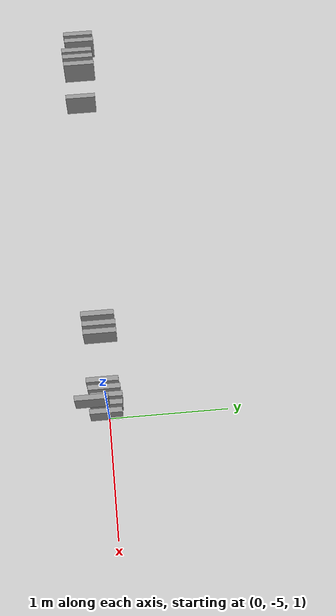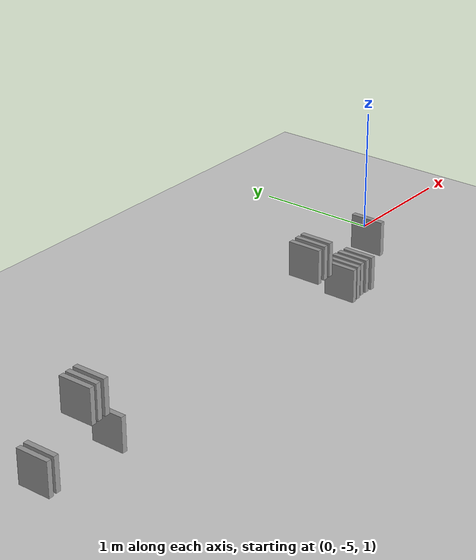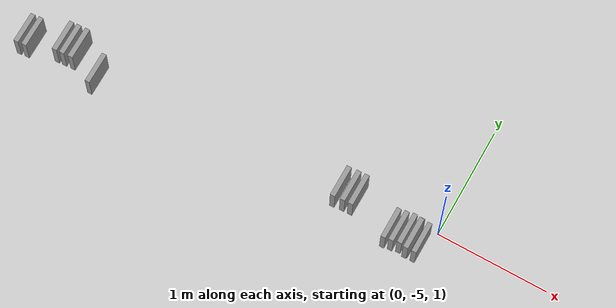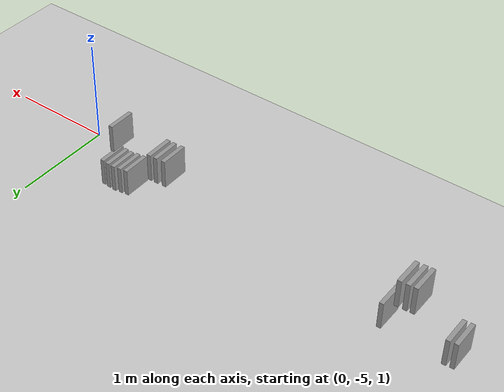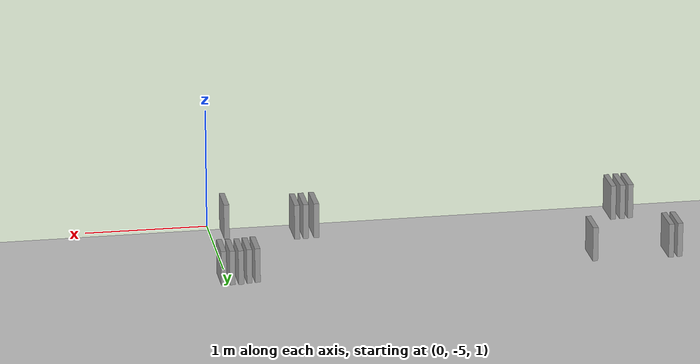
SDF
<sdf version="1.6">
 <world name="default">
  <physics type="ode">
   <max_step_size>0.001</max_step_size>
   <real_time_update_rate>1000</real_time_update_rate>
  </physics>
  <include><uri>model://sun</uri></include>
  <include><uri>model://ground_plane</uri></include>
  <include><name>books</name><uri>model://books</uri><pose>-1.691080 -5.046710 0.834354 0 0 0</pose></include>
 </world>
</sdf>

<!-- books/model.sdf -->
<sdf version='1.6'>
  <model name='books'>
    <link name='link_0'>
      <inertial>
        <mass>0.0037452</mass>
        <inertia>
          <ixx>5.273e-05</ixx>
          <ixy>0</ixy>
          <ixz>0</ixz>
          <iyy>2.782e-05</iyy>
          <iyz>0</iyz>
          <izz>2.614e-05</izz>
        </inertia>
        <pose frame=''>0 0 0 0 -0 0</pose>
      </inertial>
      <pose frame=''>-2.27316 0.001347 -0.171949 0 -0 0</pose>
      <gravity>0</gravity>
      <self_collide>0</self_collide>
      <kinematic>0</kinematic>
      <enable_wind>0</enable_wind>
      <visual name='visual'>
        <pose frame=''>0 0 0 0 -0 0</pose>
        <geometry>
          <box>
            <size>0.044368 0.285961 0.295262</size>
          </box>
        </geometry>
        <material>
          <lighting>1</lighting>
          <script>
            <uri>file://media/materials/scripts/gazebo.material</uri>
            <name>Gazebo/Grey</name>
          </script>
          <shader type='vertex'>
            <normal_map>__default__</normal_map>
          </shader>
        </material>
        <transparency>0</transparency>
        <cast_shadows>1</cast_shadows>
      </visual>
      <collision name='collision'>
        <laser_retro>0</laser_retro>
        <max_contacts>10</max_contacts>
        <pose frame=''>0 0 0 0 -0 0</pose>
        <geometry>
          <box>
            <size>0.044368 0.285961 0.295262</size>
          </box>
        </geometry>
        <surface>
          <friction>
            <ode>
              <mu>1</mu>
              <mu2>1</mu2>
              <fdir1>0 0 0</fdir1>
              <slip1>0</slip1>
              <slip2>0</slip2>
            </ode>
            <torsional>
              <coefficient>1</coefficient>
              <patch_radius>0</patch_radius>
              <surface_radius>0</surface_radius>
              <use_patch_radius>1</use_patch_radius>
              <ode>
                <slip>0</slip>
              </ode>
            </torsional>
          </friction>
          <bounce>
            <restitution_coefficient>0</restitution_coefficient>
            <threshold>1e+06</threshold>
          </bounce>
          <contact>
            <collide_without_contact>0</collide_without_contact>
            <collide_without_contact_bitmask>1</collide_without_contact_bitmask>
            <collide_bitmask>1</collide_bitmask>
            <ode>
              <soft_cfm>0</soft_cfm>
              <soft_erp>0.2</soft_erp>
              <kp>1e+13</kp>
              <kd>1</kd>
              <max_vel>0.01</max_vel>
              <min_depth>0</min_depth>
            </ode>
            <bullet>
              <split_impulse>1</split_impulse>
              <split_impulse_penetration_threshold>-0.01</split_impulse_penetration_threshold>
              <soft_cfm>0</soft_cfm>
              <soft_erp>0.2</soft_erp>
              <kp>1e+13</kp>
              <kd>1</kd>
            </bullet>
          </contact>
        </surface>
      </collision>
    </link>
    <link name='link_0_clone'>
      <inertial>
        <mass>0.0037452</mass>
        <inertia>
          <ixx>5.273e-05</ixx>
          <ixy>0</ixy>
          <ixz>0</ixz>
          <iyy>2.782e-05</iyy>
          <iyz>0</iyz>
          <izz>2.614e-05</izz>
        </inertia>
        <pose frame=''>0 0 0 0 -0 0</pose>
      </inertial>
      <pose frame=''>-2.19825 0.008218 -0.171949 0 -0 0</pose>
      <gravity>0</gravity>
      <self_collide>0</self_collide>
      <kinematic>0</kinematic>
      <enable_wind>0</enable_wind>
      <visual name='visual'>
        <pose frame=''>0 0 0 0 -0 0</pose>
        <geometry>
          <box>
            <size>0.044368 0.285961 0.295262</size>
          </box>
        </geometry>
        <material>
          <lighting>1</lighting>
          <script>
            <uri>file://media/materials/scripts/gazebo.material</uri>
            <name>Gazebo/Grey</name>
          </script>
          <shader type='vertex'>
            <normal_map>__default__</normal_map>
          </shader>
        </material>
        <transparency>0</transparency>
        <cast_shadows>1</cast_shadows>
      </visual>
      <collision name='collision'>
        <laser_retro>0</laser_retro>
        <max_contacts>10</max_contacts>
        <pose frame=''>0 0 0 0 -0 0</pose>
        <geometry>
          <box>
            <size>0.044368 0.285961 0.295262</size>
          </box>
        </geometry>
        <surface>
          <friction>
            <ode>
              <mu>1</mu>
              <mu2>1</mu2>
              <fdir1>0 0 0</fdir1>
              <slip1>0</slip1>
              <slip2>0</slip2>
            </ode>
            <torsional>
              <coefficient>1</coefficient>
              <patch_radius>0</patch_radius>
              <surface_radius>0</surface_radius>
              <use_patch_radius>1</use_patch_radius>
              <ode>
                <slip>0</slip>
              </ode>
            </torsional>
          </friction>
          <bounce>
            <restitution_coefficient>0</restitution_coefficient>
            <threshold>1e+06</threshold>
          </bounce>
          <contact>
            <collide_without_contact>0</collide_without_contact>
            <collide_without_contact_bitmask>1</collide_without_contact_bitmask>
            <collide_bitmask>1</collide_bitmask>
            <ode>
              <soft_cfm>0</soft_cfm>
              <soft_erp>0.2</soft_erp>
              <kp>1e+13</kp>
              <kd>1</kd>
              <max_vel>0.01</max_vel>
              <min_depth>0</min_depth>
            </ode>
            <bullet>
              <split_impulse>1</split_impulse>
              <split_impulse_penetration_threshold>-0.01</split_impulse_penetration_threshold>
              <soft_cfm>0</soft_cfm>
              <soft_erp>0.2</soft_erp>
              <kp>1e+13</kp>
              <kd>1</kd>
            </bullet>
          </contact>
        </surface>
      </collision>
    </link>
    <link name='link_0_clone_0'>
      <inertial>
        <mass>0.0037452</mass>
        <inertia>
          <ixx>5.273e-05</ixx>
          <ixy>0</ixy>
          <ixz>0</ixz>
          <iyy>2.782e-05</iyy>
          <iyz>0</iyz>
          <izz>2.614e-05</izz>
        </inertia>
        <pose frame=''>0 0 0 0 -0 0</pose>
      </inertial>
      <pose frame=''>-1.55443 -0.016063 -0.171949 0 -0 0</pose>
      <gravity>0</gravity>
      <self_collide>0</self_collide>
      <kinematic>0</kinematic>
      <enable_wind>0</enable_wind>
      <visual name='visual'>
        <pose frame=''>0 0 0 0 -0 0</pose>
        <geometry>
          <box>
            <size>0.044368 0.285961 0.295262</size>
          </box>
        </geometry>
        <material>
          <lighting>1</lighting>
          <script>
            <uri>file://media/materials/scripts/gazebo.material</uri>
            <name>Gazebo/Grey</name>
          </script>
          <shader type='vertex'>
            <normal_map>__default__</normal_map>
          </shader>
        </material>
        <transparency>0</transparency>
        <cast_shadows>1</cast_shadows>
      </visual>
      <collision name='collision'>
        <laser_retro>0</laser_retro>
        <max_contacts>10</max_contacts>
        <pose frame=''>0 0 0 0 -0 0</pose>
        <geometry>
          <box>
            <size>0.044368 0.285961 0.295262</size>
          </box>
        </geometry>
        <surface>
          <friction>
            <ode>
              <mu>1</mu>
              <mu2>1</mu2>
              <fdir1>0 0 0</fdir1>
              <slip1>0</slip1>
              <slip2>0</slip2>
            </ode>
            <torsional>
              <coefficient>1</coefficient>
              <patch_radius>0</patch_radius>
              <surface_radius>0</surface_radius>
              <use_patch_radius>1</use_patch_radius>
              <ode>
                <slip>0</slip>
              </ode>
            </torsional>
          </friction>
          <bounce>
            <restitution_coefficient>0</restitution_coefficient>
            <threshold>1e+06</threshold>
          </bounce>
          <contact>
            <collide_without_contact>0</collide_without_contact>
            <collide_without_contact_bitmask>1</collide_without_contact_bitmask>
            <collide_bitmask>1</collide_bitmask>
            <ode>
              <soft_cfm>0</soft_cfm>
              <soft_erp>0.2</soft_erp>
              <kp>1e+13</kp>
              <kd>1</kd>
              <max_vel>0.01</max_vel>
              <min_depth>0</min_depth>
            </ode>
            <bullet>
              <split_impulse>1</split_impulse>
              <split_impulse_penetration_threshold>-0.01</split_impulse_penetration_threshold>
              <soft_cfm>0</soft_cfm>
              <soft_erp>0.2</soft_erp>
              <kp>1e+13</kp>
              <kd>1</kd>
            </bullet>
          </contact>
        </surface>
      </collision>
    </link>
    <link name='link_0_clone_1'>
      <inertial>
        <mass>0.0037452</mass>
        <inertia>
          <ixx>5.273e-05</ixx>
          <ixy>0</ixy>
          <ixz>0</ixz>
          <iyy>2.782e-05</iyy>
          <iyz>0</iyz>
          <izz>2.614e-05</izz>
        </inertia>
        <pose frame=''>0 0 0 0 -0 0</pose>
      </inertial>
      <pose frame=''>-1.77392 -0.004673 0.194966 0 -0 0</pose>
      <gravity>0</gravity>
      <self_collide>0</self_collide>
      <kinematic>0</kinematic>
      <enable_wind>0</enable_wind>
      <visual name='visual'>
        <pose frame=''>0 0 0 0 -0 0</pose>
        <geometry>
          <box>
            <size>0.044368 0.285961 0.295262</size>
          </box>
        </geometry>
        <material>
          <lighting>1</lighting>
          <script>
            <uri>file://media/materials/scripts/gazebo.material</uri>
            <name>Gazebo/Grey</name>
          </script>
          <shader type='vertex'>
            <normal_map>__default__</normal_map>
          </shader>
        </material>
        <transparency>0</transparency>
        <cast_shadows>1</cast_shadows>
      </visual>
      <collision name='collision'>
        <laser_retro>0</laser_retro>
        <max_contacts>10</max_contacts>
        <pose frame=''>0 0 0 0 -0 0</pose>
        <geometry>
          <box>
            <size>0.044368 0.285961 0.295262</size>
          </box>
        </geometry>
        <surface>
          <friction>
            <ode>
              <mu>1</mu>
              <mu2>1</mu2>
              <fdir1>0 0 0</fdir1>
              <slip1>0</slip1>
              <slip2>0</slip2>
            </ode>
            <torsional>
              <coefficient>1</coefficient>
              <patch_radius>0</patch_radius>
              <surface_radius>0</surface_radius>
              <use_patch_radius>1</use_patch_radius>
              <ode>
                <slip>0</slip>
              </ode>
            </torsional>
          </friction>
          <bounce>
            <restitution_coefficient>0</restitution_coefficient>
            <threshold>1e+06</threshold>
          </bounce>
          <contact>
            <collide_without_contact>0</collide_without_contact>
            <collide_without_contact_bitmask>1</collide_without_contact_bitmask>
            <collide_bitmask>1</collide_bitmask>
            <ode>
              <soft_cfm>0</soft_cfm>
              <soft_erp>0.2</soft_erp>
              <kp>1e+13</kp>
              <kd>1</kd>
              <max_vel>0.01</max_vel>
              <min_depth>0</min_depth>
            </ode>
            <bullet>
              <split_impulse>1</split_impulse>
              <split_impulse_penetration_threshold>-0.01</split_impulse_penetration_threshold>
              <soft_cfm>0</soft_cfm>
              <soft_erp>0.2</soft_erp>
              <kp>1e+13</kp>
              <kd>1</kd>
            </bullet>
          </contact>
        </surface>
      </collision>
    </link>
    <link name='link_0_clone_1_clone'>
      <inertial>
        <mass>0.0037452</mass>
        <inertia>
          <ixx>5.273e-05</ixx>
          <ixy>0</ixy>
          <ixz>0</ixz>
          <iyy>2.782e-05</iyy>
          <iyz>0</iyz>
          <izz>2.614e-05</izz>
        </inertia>
        <pose frame=''>0 0 0 0 -0 0</pose>
      </inertial>
      <pose frame=''>-1.84286 -0.009593 0.194966 0 -0 0</pose>
      <gravity>0</gravity>
      <self_collide>0</self_collide>
      <kinematic>0</kinematic>
      <enable_wind>0</enable_wind>
      <visual name='visual'>
        <pose frame=''>0 0 0 0 -0 0</pose>
        <geometry>
          <box>
            <size>0.044368 0.285961 0.295262</size>
          </box>
        </geometry>
        <material>
          <lighting>1</lighting>
          <script>
            <uri>file://media/materials/scripts/gazebo.material</uri>
            <name>Gazebo/Grey</name>
          </script>
          <shader type='pixel'>
            <normal_map>__default__</normal_map>
          </shader>
        </material>
        <transparency>0</transparency>
        <cast_shadows>1</cast_shadows>
      </visual>
      <collision name='collision'>
        <laser_retro>0</laser_retro>
        <max_contacts>10</max_contacts>
        <pose frame=''>0 0 0 0 -0 0</pose>
        <geometry>
          <box>
            <size>0.044368 0.285961 0.295262</size>
          </box>
        </geometry>
        <surface>
          <friction>
            <ode>
              <mu>1</mu>
              <mu2>1</mu2>
              <fdir1>0 0 0</fdir1>
              <slip1>0</slip1>
              <slip2>0</slip2>
            </ode>
            <torsional>
              <coefficient>1</coefficient>
              <patch_radius>0</patch_radius>
              <surface_radius>0</surface_radius>
              <use_patch_radius>1</use_patch_radius>
              <ode>
                <slip>0</slip>
              </ode>
            </torsional>
          </friction>
          <bounce>
            <restitution_coefficient>0</restitution_coefficient>
            <threshold>1e+06</threshold>
          </bounce>
          <contact>
            <collide_without_contact>0</collide_without_contact>
            <collide_without_contact_bitmask>1</collide_without_contact_bitmask>
            <collide_bitmask>1</collide_bitmask>
            <ode>
              <soft_cfm>0</soft_cfm>
              <soft_erp>0.2</soft_erp>
              <kp>1e+13</kp>
              <kd>1</kd>
              <max_vel>0.01</max_vel>
              <min_depth>0</min_depth>
            </ode>
            <bullet>
              <split_impulse>1</split_impulse>
              <split_impulse_penetration_threshold>-0.01</split_impulse_penetration_threshold>
              <soft_cfm>0</soft_cfm>
              <soft_erp>0.2</soft_erp>
              <kp>1e+13</kp>
              <kd>1</kd>
            </bullet>
          </contact>
        </surface>
      </collision>
    </link>
    <link name='link_0_clone_1_clone_0'>
      <inertial>
        <mass>0.0037452</mass>
        <inertia>
          <ixx>5.273e-05</ixx>
          <ixy>0</ixy>
          <ixz>0</ixz>
          <iyy>2.782e-05</iyy>
          <iyz>0</iyz>
          <izz>2.614e-05</izz>
        </inertia>
        <pose frame=''>0 0 0 0 -0 0</pose>
      </inertial>
      <pose frame=''>-1.69477 0.000277 0.194966 0 -0 0</pose>
      <gravity>0</gravity>
      <self_collide>0</self_collide>
      <kinematic>0</kinematic>
      <enable_wind>0</enable_wind>
      <visual name='visual'>
        <pose frame=''>0 0 0 0 -0 0</pose>
        <geometry>
          <box>
            <size>0.044368 0.285961 0.295262</size>
          </box>
        </geometry>
        <material>
          <lighting>1</lighting>
          <script>
            <uri>file://media/materials/scripts/gazebo.material</uri>
            <name>Gazebo/Grey</name>
          </script>
          <shader type='pixel'>
            <normal_map>__default__</normal_map>
          </shader>
        </material>
        <transparency>0</transparency>
        <cast_shadows>1</cast_shadows>
      </visual>
      <collision name='collision'>
        <laser_retro>0</laser_retro>
        <max_contacts>10</max_contacts>
        <pose frame=''>0 0 0 0 -0 0</pose>
        <geometry>
          <box>
            <size>0.044368 0.285961 0.295262</size>
          </box>
        </geometry>
        <surface>
          <friction>
            <ode>
              <mu>1</mu>
              <mu2>1</mu2>
              <fdir1>0 0 0</fdir1>
              <slip1>0</slip1>
              <slip2>0</slip2>
            </ode>
            <torsional>
              <coefficient>1</coefficient>
              <patch_radius>0</patch_radius>
              <surface_radius>0</surface_radius>
              <use_patch_radius>1</use_patch_radius>
              <ode>
                <slip>0</slip>
              </ode>
            </torsional>
          </friction>
          <bounce>
            <restitution_coefficient>0</restitution_coefficient>
            <threshold>1e+06</threshold>
          </bounce>
          <contact>
            <collide_without_contact>0</collide_without_contact>
            <collide_without_contact_bitmask>1</collide_without_contact_bitmask>
            <collide_bitmask>1</collide_bitmask>
            <ode>
              <soft_cfm>0</soft_cfm>
              <soft_erp>0.2</soft_erp>
              <kp>1e+13</kp>
              <kd>1</kd>
              <max_vel>0.01</max_vel>
              <min_depth>0</min_depth>
            </ode>
            <bullet>
              <split_impulse>1</split_impulse>
              <split_impulse_penetration_threshold>-0.01</split_impulse_penetration_threshold>
              <soft_cfm>0</soft_cfm>
              <soft_erp>0.2</soft_erp>
              <kp>1e+13</kp>
              <kd>1</kd>
            </bullet>
          </contact>
        </surface>
      </collision>
    </link>
    <link name='link_0_clone_1_clone_1'>
      <inertial>
        <mass>0.0037452</mass>
        <inertia>
          <ixx>5.273e-05</ixx>
          <ixy>0</ixy>
          <ixz>0</ixz>
          <iyy>2.782e-05</iyy>
          <iyz>0</iyz>
          <izz>2.614e-05</izz>
        </inertia>
        <pose frame=''>0 0 0 0 -0 0</pose>
      </inertial>
      <pose frame=''>0.800735 0.006867 0.194966 0 -0 0</pose>
      <gravity>0</gravity>
      <self_collide>0</self_collide>
      <kinematic>0</kinematic>
      <enable_wind>0</enable_wind>
      <visual name='visual'>
        <pose frame=''>0 0 0 0 -0 0</pose>
        <geometry>
          <box>
            <size>0.044368 0.285961 0.295262</size>
          </box>
        </geometry>
        <material>
          <lighting>1</lighting>
          <script>
            <uri>file://media/materials/scripts/gazebo.material</uri>
            <name>Gazebo/Grey</name>
          </script>
          <shader type='pixel'>
            <normal_map>__default__</normal_map>
          </shader>
        </material>
        <transparency>0</transparency>
        <cast_shadows>1</cast_shadows>
      </visual>
      <collision name='collision'>
        <laser_retro>0</laser_retro>
        <max_contacts>10</max_contacts>
        <pose frame=''>0 0 0 0 -0 0</pose>
        <geometry>
          <box>
            <size>0.044368 0.285961 0.295262</size>
          </box>
        </geometry>
        <surface>
          <friction>
            <ode>
              <mu>1</mu>
              <mu2>1</mu2>
              <fdir1>0 0 0</fdir1>
              <slip1>0</slip1>
              <slip2>0</slip2>
            </ode>
            <torsional>
              <coefficient>1</coefficient>
              <patch_radius>0</patch_radius>
              <surface_radius>0</surface_radius>
              <use_patch_radius>1</use_patch_radius>
              <ode>
                <slip>0</slip>
              </ode>
            </torsional>
          </friction>
          <bounce>
            <restitution_coefficient>0</restitution_coefficient>
            <threshold>1e+06</threshold>
          </bounce>
          <contact>
            <collide_without_contact>0</collide_without_contact>
            <collide_without_contact_bitmask>1</collide_without_contact_bitmask>
            <collide_bitmask>1</collide_bitmask>
            <ode>
              <soft_cfm>0</soft_cfm>
              <soft_erp>0.2</soft_erp>
              <kp>1e+13</kp>
              <kd>1</kd>
              <max_vel>0.01</max_vel>
              <min_depth>0</min_depth>
            </ode>
            <bullet>
              <split_impulse>1</split_impulse>
              <split_impulse_penetration_threshold>-0.01</split_impulse_penetration_threshold>
              <soft_cfm>0</soft_cfm>
              <soft_erp>0.2</soft_erp>
              <kp>1e+13</kp>
              <kd>1</kd>
            </bullet>
          </contact>
        </surface>
      </collision>
    </link>
    <link name='link_0_clone_1_clone_2'>
      <inertial>
        <mass>0.0037452</mass>
        <inertia>
          <ixx>5.273e-05</ixx>
          <ixy>0</ixy>
          <ixz>0</ixz>
          <iyy>2.782e-05</iyy>
          <iyz>0</iyz>
          <izz>2.614e-05</izz>
        </inertia>
        <pose frame=''>0 0 0 0 -0 0</pose>
      </inertial>
      <pose frame=''>0.889069 0.013937 0.194966 0 -0 0</pose>
      <gravity>0</gravity>
      <self_collide>0</self_collide>
      <kinematic>0</kinematic>
      <enable_wind>0</enable_wind>
      <visual name='visual'>
        <pose frame=''>0 0 0 0 -0 0</pose>
        <geometry>
          <box>
            <size>0.044368 0.285961 0.295262</size>
          </box>
        </geometry>
        <material>
          <lighting>1</lighting>
          <script>
            <uri>file://media/materials/scripts/gazebo.material</uri>
            <name>Gazebo/Grey</name>
          </script>
          <shader type='pixel'>
            <normal_map>__default__</normal_map>
          </shader>
        </material>
        <transparency>0</transparency>
        <cast_shadows>1</cast_shadows>
      </visual>
      <collision name='collision'>
        <laser_retro>0</laser_retro>
        <max_contacts>10</max_contacts>
        <pose frame=''>0 0 0 0 -0 0</pose>
        <geometry>
          <box>
            <size>0.044368 0.285961 0.295262</size>
          </box>
        </geometry>
        <surface>
          <friction>
            <ode>
              <mu>1</mu>
              <mu2>1</mu2>
              <fdir1>0 0 0</fdir1>
              <slip1>0</slip1>
              <slip2>0</slip2>
            </ode>
            <torsional>
              <coefficient>1</coefficient>
              <patch_radius>0</patch_radius>
              <surface_radius>0</surface_radius>
              <use_patch_radius>1</use_patch_radius>
              <ode>
                <slip>0</slip>
              </ode>
            </torsional>
          </friction>
          <bounce>
            <restitution_coefficient>0</restitution_coefficient>
            <threshold>1e+06</threshold>
          </bounce>
          <contact>
            <collide_without_contact>0</collide_without_contact>
            <collide_without_contact_bitmask>1</collide_without_contact_bitmask>
            <collide_bitmask>1</collide_bitmask>
            <ode>
              <soft_cfm>0</soft_cfm>
              <soft_erp>0.2</soft_erp>
              <kp>1e+13</kp>
              <kd>1</kd>
              <max_vel>0.01</max_vel>
              <min_depth>0</min_depth>
            </ode>
            <bullet>
              <split_impulse>1</split_impulse>
              <split_impulse_penetration_threshold>-0.01</split_impulse_penetration_threshold>
              <soft_cfm>0</soft_cfm>
              <soft_erp>0.2</soft_erp>
              <kp>1e+13</kp>
              <kd>1</kd>
            </bullet>
          </contact>
        </surface>
      </collision>
    </link>
    <link name='link_0_clone_1_clone_3'>
      <inertial>
        <mass>0.0037452</mass>
        <inertia>
          <ixx>5.273e-05</ixx>
          <ixy>0</ixy>
          <ixz>0</ixz>
          <iyy>2.782e-05</iyy>
          <iyz>0</iyz>
          <izz>2.614e-05</izz>
        </inertia>
        <pose frame=''>0 0 0 0 -0 0</pose>
      </inertial>
      <pose frame=''>0.962405 0.016288 0.194966 0 -0 0</pose>
      <gravity>0</gravity>
      <self_collide>0</self_collide>
      <kinematic>0</kinematic>
      <enable_wind>0</enable_wind>
      <visual name='visual'>
        <pose frame=''>0 0 0 0 -0 0</pose>
        <geometry>
          <box>
            <size>0.044368 0.285961 0.295262</size>
          </box>
        </geometry>
        <material>
          <lighting>1</lighting>
          <script>
            <uri>file://media/materials/scripts/gazebo.material</uri>
            <name>Gazebo/Grey</name>
          </script>
          <shader type='pixel'>
            <normal_map>__default__</normal_map>
          </shader>
        </material>
        <transparency>0</transparency>
        <cast_shadows>1</cast_shadows>
      </visual>
      <collision name='collision'>
        <laser_retro>0</laser_retro>
        <max_contacts>10</max_contacts>
        <pose frame=''>0 0 0 0 -0 0</pose>
        <geometry>
          <box>
            <size>0.044368 0.285961 0.295262</size>
          </box>
        </geometry>
        <surface>
          <friction>
            <ode>
              <mu>1</mu>
              <mu2>1</mu2>
              <fdir1>0 0 0</fdir1>
              <slip1>0</slip1>
              <slip2>0</slip2>
            </ode>
            <torsional>
              <coefficient>1</coefficient>
              <patch_radius>0</patch_radius>
              <surface_radius>0</surface_radius>
              <use_patch_radius>1</use_patch_radius>
              <ode>
                <slip>0</slip>
              </ode>
            </torsional>
          </friction>
          <bounce>
            <restitution_coefficient>0</restitution_coefficient>
            <threshold>1e+06</threshold>
          </bounce>
          <contact>
            <collide_without_contact>0</collide_without_contact>
            <collide_without_contact_bitmask>1</collide_without_contact_bitmask>
            <collide_bitmask>1</collide_bitmask>
            <ode>
              <soft_cfm>0</soft_cfm>
              <soft_erp>0.2</soft_erp>
              <kp>1e+13</kp>
              <kd>1</kd>
              <max_vel>0.01</max_vel>
              <min_depth>0</min_depth>
            </ode>
            <bullet>
              <split_impulse>1</split_impulse>
              <split_impulse_penetration_threshold>-0.01</split_impulse_penetration_threshold>
              <soft_cfm>0</soft_cfm>
              <soft_erp>0.2</soft_erp>
              <kp>1e+13</kp>
              <kd>1</kd>
            </bullet>
          </contact>
        </surface>
      </collision>
    </link>
    <link name='link_0_clone_1_clone_4'>
      <inertial>
        <mass>0.0037452</mass>
        <inertia>
          <ixx>5.273e-05</ixx>
          <ixy>0</ixy>
          <ixz>0</ixz>
          <iyy>2.782e-05</iyy>
          <iyz>0</iyz>
          <izz>2.614e-05</izz>
        </inertia>
        <pose frame=''>0 0 0 0 -0 0</pose>
      </inertial>
      <pose frame=''>1.53025 -0.090843 0.194966 0 -0 0</pose>
      <gravity>0</gravity>
      <self_collide>0</self_collide>
      <kinematic>0</kinematic>
      <enable_wind>0</enable_wind>
      <visual name='visual'>
        <pose frame=''>0 0 0 0 -0 0</pose>
        <geometry>
          <box>
            <size>0.044368 0.285961 0.295262</size>
          </box>
        </geometry>
        <material>
          <lighting>1</lighting>
          <script>
            <uri>file://media/materials/scripts/gazebo.material</uri>
            <name>Gazebo/Grey</name>
          </script>
          <shader type='pixel'>
            <normal_map>__default__</normal_map>
          </shader>
        </material>
        <transparency>0</transparency>
        <cast_shadows>1</cast_shadows>
      </visual>
      <collision name='collision'>
        <laser_retro>0</laser_retro>
        <max_contacts>10</max_contacts>
        <pose frame=''>0 0 0 0 -0 0</pose>
        <geometry>
          <box>
            <size>0.044368 0.285961 0.295262</size>
          </box>
        </geometry>
        <surface>
          <friction>
            <ode>
              <mu>1</mu>
              <mu2>1</mu2>
              <fdir1>0 0 0</fdir1>
              <slip1>0</slip1>
              <slip2>0</slip2>
            </ode>
            <torsional>
              <coefficient>1</coefficient>
              <patch_radius>0</patch_radius>
              <surface_radius>0</surface_radius>
              <use_patch_radius>1</use_patch_radius>
              <ode>
                <slip>0</slip>
              </ode>
            </torsional>
          </friction>
          <bounce>
            <restitution_coefficient>0</restitution_coefficient>
            <threshold>1e+06</threshold>
          </bounce>
          <contact>
            <collide_without_contact>0</collide_without_contact>
            <collide_without_contact_bitmask>1</collide_without_contact_bitmask>
            <collide_bitmask>1</collide_bitmask>
            <ode>
              <soft_cfm>0</soft_cfm>
              <soft_erp>0.2</soft_erp>
              <kp>1e+13</kp>
              <kd>1</kd>
              <max_vel>0.01</max_vel>
              <min_depth>0</min_depth>
            </ode>
            <bullet>
              <split_impulse>1</split_impulse>
              <split_impulse_penetration_threshold>-0.01</split_impulse_penetration_threshold>
              <soft_cfm>0</soft_cfm>
              <soft_erp>0.2</soft_erp>
              <kp>1e+13</kp>
              <kd>1</kd>
            </bullet>
          </contact>
        </surface>
      </collision>
    </link>
    <link name='link_0_clone_1_clone_5'>
      <inertial>
        <mass>0.0037452</mass>
        <inertia>
          <ixx>5.273e-05</ixx>
          <ixy>0</ixy>
          <ixz>0</ixz>
          <iyy>2.782e-05</iyy>
          <iyz>0</iyz>
          <izz>2.614e-05</izz>
        </inertia>
        <pose frame=''>0 0 0 0 -0 0</pose>
      </inertial>
      <pose frame=''>1.29057 0.000807 -0.169784 0 -0 0</pose>
      <gravity>0</gravity>
      <self_collide>0</self_collide>
      <kinematic>0</kinematic>
      <enable_wind>0</enable_wind>
      <visual name='visual'>
        <pose frame=''>0 0 0 0 -0 0</pose>
        <geometry>
          <box>
            <size>0.044368 0.285961 0.295262</size>
          </box>
        </geometry>
        <material>
          <lighting>1</lighting>
          <script>
            <uri>file://media/materials/scripts/gazebo.material</uri>
            <name>Gazebo/Grey</name>
          </script>
          <shader type='pixel'>
            <normal_map>__default__</normal_map>
          </shader>
        </material>
        <transparency>0</transparency>
        <cast_shadows>1</cast_shadows>
      </visual>
      <collision name='collision'>
        <laser_retro>0</laser_retro>
        <max_contacts>10</max_contacts>
        <pose frame=''>0 0 0 0 -0 0</pose>
        <geometry>
          <box>
            <size>0.044368 0.285961 0.295262</size>
          </box>
        </geometry>
        <surface>
          <friction>
            <ode>
              <mu>1</mu>
              <mu2>1</mu2>
              <fdir1>0 0 0</fdir1>
              <slip1>0</slip1>
              <slip2>0</slip2>
            </ode>
            <torsional>
              <coefficient>1</coefficient>
              <patch_radius>0</patch_radius>
              <surface_radius>0</surface_radius>
              <use_patch_radius>1</use_patch_radius>
              <ode>
                <slip>0</slip>
              </ode>
            </torsional>
          </friction>
          <bounce>
            <restitution_coefficient>0</restitution_coefficient>
            <threshold>1e+06</threshold>
          </bounce>
          <contact>
            <collide_without_contact>0</collide_without_contact>
            <collide_without_contact_bitmask>1</collide_without_contact_bitmask>
            <collide_bitmask>1</collide_bitmask>
            <ode>
              <soft_cfm>0</soft_cfm>
              <soft_erp>0.2</soft_erp>
              <kp>1e+13</kp>
              <kd>1</kd>
              <max_vel>0.01</max_vel>
              <min_depth>0</min_depth>
            </ode>
            <bullet>
              <split_impulse>1</split_impulse>
              <split_impulse_penetration_threshold>-0.01</split_impulse_penetration_threshold>
              <soft_cfm>0</soft_cfm>
              <soft_erp>0.2</soft_erp>
              <kp>1e+13</kp>
              <kd>1</kd>
            </bullet>
          </contact>
        </surface>
      </collision>
    </link>
    <link name='link_0_clone_1_clone_5_clone'>
      <inertial>
        <mass>0.0037452</mass>
        <inertia>
          <ixx>5.273e-05</ixx>
          <ixy>0</ixy>
          <ixz>0</ixz>
          <iyy>2.782e-05</iyy>
          <iyz>0</iyz>
          <izz>2.614e-05</izz>
        </inertia>
        <pose frame=''>0 0 0 0 -0 0</pose>
      </inertial>
      <pose frame=''>1.35968 0.011237 -0.169784 0 -0 0</pose>
      <gravity>0</gravity>
      <self_collide>0</self_collide>
      <kinematic>0</kinematic>
      <enable_wind>0</enable_wind>
      <visual name='visual'>
        <pose frame=''>0 0 0 0 -0 0</pose>
        <geometry>
          <box>
            <size>0.044368 0.285961 0.295262</size>
          </box>
        </geometry>
        <material>
          <lighting>1</lighting>
          <script>
            <uri>file://media/materials/scripts/gazebo.material</uri>
            <name>Gazebo/Grey</name>
          </script>
          <shader type='pixel'>
            <normal_map>__default__</normal_map>
          </shader>
        </material>
        <transparency>0</transparency>
        <cast_shadows>1</cast_shadows>
      </visual>
      <collision name='collision'>
        <laser_retro>0</laser_retro>
        <max_contacts>10</max_contacts>
        <pose frame=''>0 0 0 0 -0 0</pose>
        <geometry>
          <box>
            <size>0.044368 0.285961 0.295262</size>
          </box>
        </geometry>
        <surface>
          <friction>
            <ode>
              <mu>1</mu>
              <mu2>1</mu2>
              <fdir1>0 0 0</fdir1>
              <slip1>0</slip1>
              <slip2>0</slip2>
            </ode>
            <torsional>
              <coefficient>1</coefficient>
              <patch_radius>0</patch_radius>
              <surface_radius>0</surface_radius>
              <use_patch_radius>1</use_patch_radius>
              <ode>
                <slip>0</slip>
              </ode>
            </torsional>
          </friction>
          <bounce>
            <restitution_coefficient>0</restitution_coefficient>
            <threshold>1e+06</threshold>
          </bounce>
          <contact>
            <collide_without_contact>0</collide_without_contact>
            <collide_without_contact_bitmask>1</collide_without_contact_bitmask>
            <collide_bitmask>1</collide_bitmask>
            <ode>
              <soft_cfm>0</soft_cfm>
              <soft_erp>0.2</soft_erp>
              <kp>1e+13</kp>
              <kd>1</kd>
              <max_vel>0.01</max_vel>
              <min_depth>0</min_depth>
            </ode>
            <bullet>
              <split_impulse>1</split_impulse>
              <split_impulse_penetration_threshold>-0.01</split_impulse_penetration_threshold>
              <soft_cfm>0</soft_cfm>
              <soft_erp>0.2</soft_erp>
              <kp>1e+13</kp>
              <kd>1</kd>
            </bullet>
          </contact>
        </surface>
      </collision>
    </link>
    <link name='link_0_clone_1_clone_5_clone_0'>
      <inertial>
        <mass>0.0037452</mass>
        <inertia>
          <ixx>5.273e-05</ixx>
          <ixy>0</ixy>
          <ixz>0</ixz>
          <iyy>2.782e-05</iyy>
          <iyz>0</iyz>
          <izz>2.614e-05</izz>
        </inertia>
        <pose frame=''>0 0 0 0 -0 0</pose>
      </inertial>
      <pose frame=''>1.43033 0.025317 -0.169784 0 -0 0</pose>
      <gravity>0</gravity>
      <self_collide>0</self_collide>
      <kinematic>0</kinematic>
      <enable_wind>0</enable_wind>
      <visual name='visual'>
        <pose frame=''>0 0 0 0 -0 0</pose>
        <geometry>
          <box>
            <size>0.044368 0.285961 0.295262</size>
          </box>
        </geometry>
        <material>
          <lighting>1</lighting>
          <script>
            <uri>file://media/materials/scripts/gazebo.material</uri>
            <name>Gazebo/Grey</name>
          </script>
          <shader type='pixel'>
            <normal_map>__default__</normal_map>
          </shader>
        </material>
        <transparency>0</transparency>
        <cast_shadows>1</cast_shadows>
      </visual>
      <collision name='collision'>
        <laser_retro>0</laser_retro>
        <max_contacts>10</max_contacts>
        <pose frame=''>0 0 0 0 -0 0</pose>
        <geometry>
          <box>
            <size>0.044368 0.285961 0.295262</size>
          </box>
        </geometry>
        <surface>
          <friction>
            <ode>
              <mu>1</mu>
              <mu2>1</mu2>
              <fdir1>0 0 0</fdir1>
              <slip1>0</slip1>
              <slip2>0</slip2>
            </ode>
            <torsional>
              <coefficient>1</coefficient>
              <patch_radius>0</patch_radius>
              <surface_radius>0</surface_radius>
              <use_patch_radius>1</use_patch_radius>
              <ode>
                <slip>0</slip>
              </ode>
            </torsional>
          </friction>
          <bounce>
            <restitution_coefficient>0</restitution_coefficient>
            <threshold>1e+06</threshold>
          </bounce>
          <contact>
            <collide_without_contact>0</collide_without_contact>
            <collide_without_contact_bitmask>1</collide_without_contact_bitmask>
            <collide_bitmask>1</collide_bitmask>
            <ode>
              <soft_cfm>0</soft_cfm>
              <soft_erp>0.2</soft_erp>
              <kp>1e+13</kp>
              <kd>1</kd>
              <max_vel>0.01</max_vel>
              <min_depth>0</min_depth>
            </ode>
            <bullet>
              <split_impulse>1</split_impulse>
              <split_impulse_penetration_threshold>-0.01</split_impulse_penetration_threshold>
              <soft_cfm>0</soft_cfm>
              <soft_erp>0.2</soft_erp>
              <kp>1e+13</kp>
              <kd>1</kd>
            </bullet>
          </contact>
        </surface>
      </collision>
    </link>
    <link name='link_0_clone_1_clone_5_clone_1'>
      <inertial>
        <mass>0.0037452</mass>
        <inertia>
          <ixx>5.273e-05</ixx>
          <ixy>0</ixy>
          <ixz>0</ixz>
          <iyy>2.782e-05</iyy>
          <iyz>0</iyz>
          <izz>2.614e-05</izz>
        </inertia>
        <pose frame=''>0 0 0 0 -0 0</pose>
      </inertial>
      <pose frame=''>1.5016 0.022147 -0.169784 0 -0 0</pose>
      <gravity>0</gravity>
      <self_collide>0</self_collide>
      <kinematic>0</kinematic>
      <enable_wind>0</enable_wind>
      <visual name='visual'>
        <pose frame=''>0 0 0 0 -0 0</pose>
        <geometry>
          <box>
            <size>0.044368 0.285961 0.295262</size>
          </box>
        </geometry>
        <material>
          <lighting>1</lighting>
          <script>
            <uri>file://media/materials/scripts/gazebo.material</uri>
            <name>Gazebo/Grey</name>
          </script>
          <shader type='pixel'>
            <normal_map>__default__</normal_map>
          </shader>
        </material>
        <transparency>0</transparency>
        <cast_shadows>1</cast_shadows>
      </visual>
      <collision name='collision'>
        <laser_retro>0</laser_retro>
        <max_contacts>10</max_contacts>
        <pose frame=''>0 0 0 0 -0 0</pose>
        <geometry>
          <box>
            <size>0.044368 0.285961 0.295262</size>
          </box>
        </geometry>
        <surface>
          <friction>
            <ode>
              <mu>1</mu>
              <mu2>1</mu2>
              <fdir1>0 0 0</fdir1>
              <slip1>0</slip1>
              <slip2>0</slip2>
            </ode>
            <torsional>
              <coefficient>1</coefficient>
              <patch_radius>0</patch_radius>
              <surface_radius>0</surface_radius>
              <use_patch_radius>1</use_patch_radius>
              <ode>
                <slip>0</slip>
              </ode>
            </torsional>
          </friction>
          <bounce>
            <restitution_coefficient>0</restitution_coefficient>
            <threshold>1e+06</threshold>
          </bounce>
          <contact>
            <collide_without_contact>0</collide_without_contact>
            <collide_without_contact_bitmask>1</collide_without_contact_bitmask>
            <collide_bitmask>1</collide_bitmask>
            <ode>
              <soft_cfm>0</soft_cfm>
              <soft_erp>0.2</soft_erp>
              <kp>1e+13</kp>
              <kd>1</kd>
              <max_vel>0.01</max_vel>
              <min_depth>0</min_depth>
            </ode>
            <bullet>
              <split_impulse>1</split_impulse>
              <split_impulse_penetration_threshold>-0.01</split_impulse_penetration_threshold>
              <soft_cfm>0</soft_cfm>
              <soft_erp>0.2</soft_erp>
              <kp>1e+13</kp>
              <kd>1</kd>
            </bullet>
          </contact>
        </surface>
      </collision>
    </link>
    <link name='link_0_clone_1_clone_5_clone_2'>
      <inertial>
        <mass>0.0037452</mass>
        <inertia>
          <ixx>5.273e-05</ixx>
          <ixy>0</ixy>
          <ixz>0</ixz>
          <iyy>2.782e-05</iyy>
          <iyz>0</iyz>
          <izz>2.614e-05</izz>
        </inertia>
        <pose frame=''>0 0 0 0 -0 0</pose>
      </inertial>
      <pose frame=''>1.57278 0.014727 -0.169784 0 -0 0</pose>
      <gravity>0</gravity>
      <self_collide>0</self_collide>
      <kinematic>0</kinematic>
      <enable_wind>0</enable_wind>
      <visual name='visual'>
        <pose frame=''>0 0 0 0 -0 0</pose>
        <geometry>
          <box>
            <size>0.044368 0.285961 0.295262</size>
          </box>
        </geometry>
        <material>
          <lighting>1</lighting>
          <script>
            <uri>file://media/materials/scripts/gazebo.material</uri>
            <name>Gazebo/Grey</name>
          </script>
          <shader type='pixel'>
            <normal_map>__default__</normal_map>
          </shader>
        </material>
        <transparency>0</transparency>
        <cast_shadows>1</cast_shadows>
      </visual>
      <collision name='collision'>
        <laser_retro>0</laser_retro>
        <max_contacts>10</max_contacts>
        <pose frame=''>0 0 0 0 -0 0</pose>
        <geometry>
          <box>
            <size>0.044368 0.285961 0.295262</size>
          </box>
        </geometry>
        <surface>
          <friction>
            <ode>
              <mu>1</mu>
              <mu2>1</mu2>
              <fdir1>0 0 0</fdir1>
              <slip1>0</slip1>
              <slip2>0</slip2>
            </ode>
            <torsional>
              <coefficient>1</coefficient>
              <patch_radius>0</patch_radius>
              <surface_radius>0</surface_radius>
              <use_patch_radius>1</use_patch_radius>
              <ode>
                <slip>0</slip>
              </ode>
            </torsional>
          </friction>
          <bounce>
            <restitution_coefficient>0</restitution_coefficient>
            <threshold>1e+06</threshold>
          </bounce>
          <contact>
            <collide_without_contact>0</collide_without_contact>
            <collide_without_contact_bitmask>1</collide_without_contact_bitmask>
            <collide_bitmask>1</collide_bitmask>
            <ode>
              <soft_cfm>0</soft_cfm>
              <soft_erp>0.2</soft_erp>
              <kp>1e+13</kp>
              <kd>1</kd>
              <max_vel>0.01</max_vel>
              <min_depth>0</min_depth>
            </ode>
            <bullet>
              <split_impulse>1</split_impulse>
              <split_impulse_penetration_threshold>-0.01</split_impulse_penetration_threshold>
              <soft_cfm>0</soft_cfm>
              <soft_erp>0.2</soft_erp>
              <kp>1e+13</kp>
              <kd>1</kd>
            </bullet>
          </contact>
        </surface>
      </collision>
    </link>
    <static>0</static>
    <allow_auto_disable>1</allow_auto_disable>
  </model>
</sdf>
